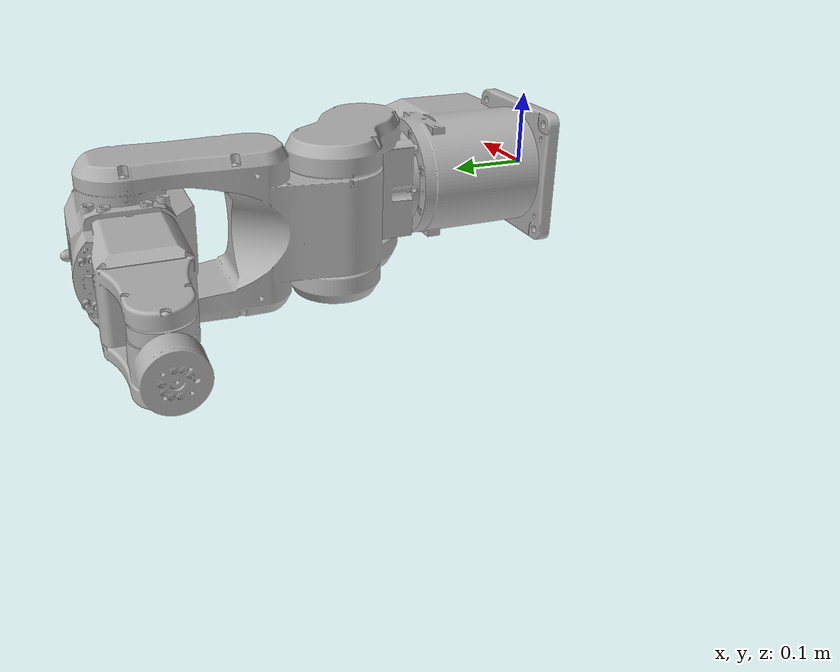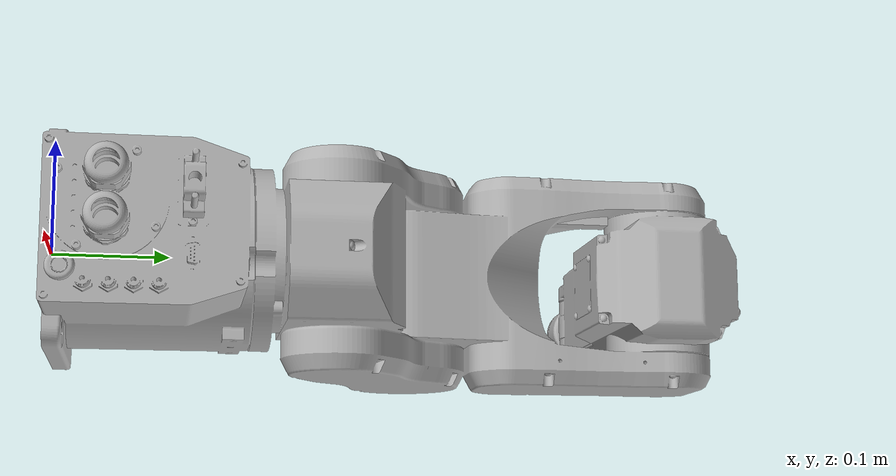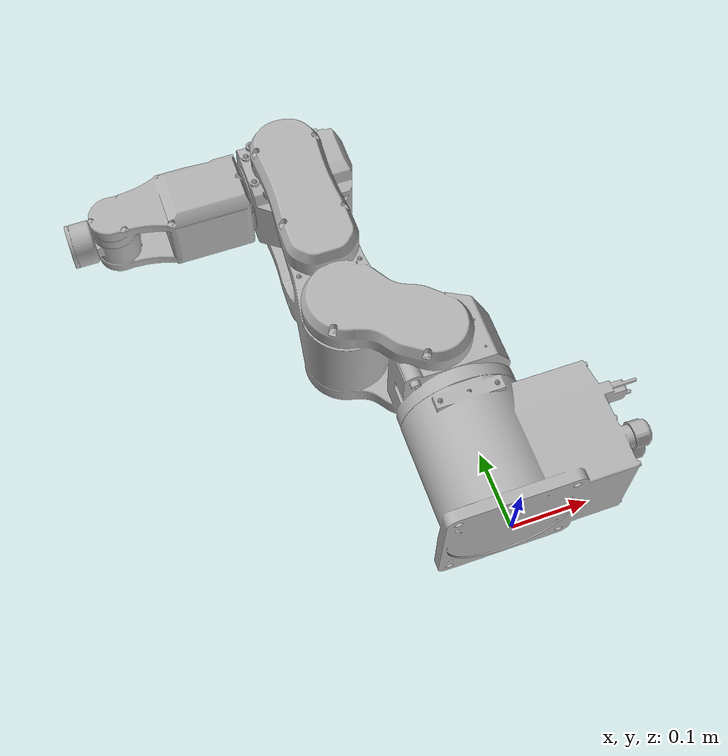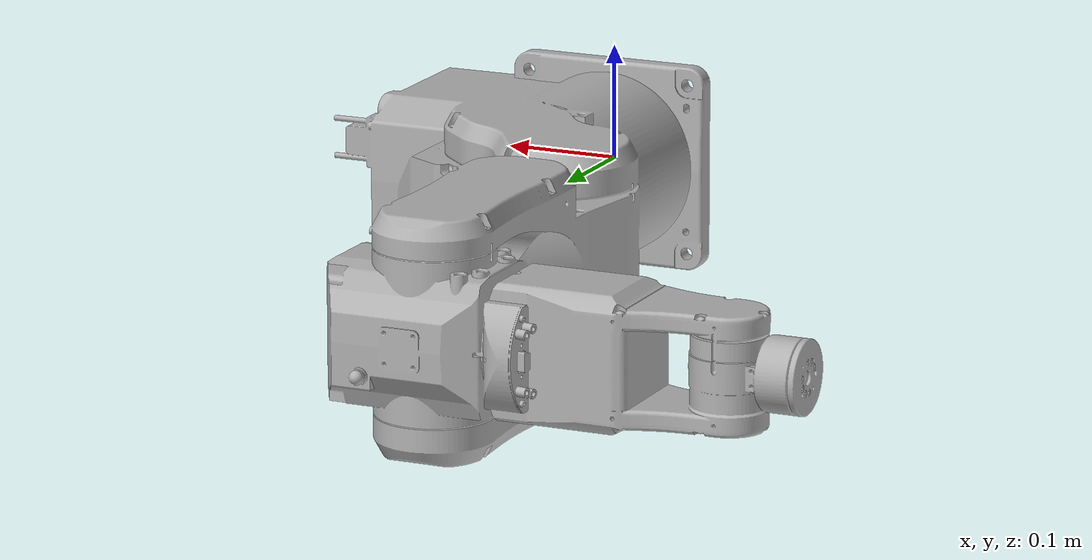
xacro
<?xml version="1.0" ?>
<robot name="epson_robot" xmlns:xacro="http://www.ros.org/wiki/xacro">

<xacro:include filename="$(find epson_robot_description)/urdf/materials.xacro" />
<xacro:include filename="$(find epson_robot_description)/urdf/epson_robot.trans" />
<xacro:include filename="$(find epson_robot_description)/urdf/epson_robot.gazebo" />
<link name="base_link">
  <inertial>
    <origin xyz="-0.051533247406446075 -6.197772503344635e-05 0.3015975534236119" rpy="0 0 0"/>
    <mass value="126.71998180805156"/>
    <inertia ixx="5.160103" iyy="6.252975" izz="1.672625" ixy="0.001555" iyz="-0.002222" ixz="1.947903"/>
  </inertial>
  <visual>
    <origin xyz="0 0 0" rpy="0 0 0"/>
    <geometry>
      <mesh filename="file://$(find epson_robot_description)/meshes/base_link.stl" scale="0.001 0.001 0.001"/>
    </geometry>
    <material name="silver"/>
  </visual>
  <collision>
    <origin xyz="0 0 0" rpy="0 0 0"/>
    <geometry>
      <mesh filename="file://$(find epson_robot_description)/meshes/base_link.stl" scale="0.001 0.001 0.001"/>
    </geometry>
  </collision>
</link>

</robot>

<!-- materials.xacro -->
<robot name="epson_robot" xmlns:xacro="http://www.ros.org/wiki/xacro" >

<material name="silver">
  <color rgba="0.700 0.700 0.700 1.000"/>
</material>

</robot>

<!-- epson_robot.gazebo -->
<robot name="epson_robot" xmlns:xacro="http://www.ros.org/wiki/xacro" >

<xacro:property name="body_color" value="Gazebo/Silver" />

<gazebo>
  <plugin name="control" filename="libgazebo_ros_control.so"/>
</gazebo>
<gazebo reference="base_link">
  <material>${body_color}</material>
  <mu1>0.2</mu1>
  <mu2>0.2</mu2>
  <self_collide>true</self_collide>
  <gravity>true</gravity>
</gazebo>

</robot>
